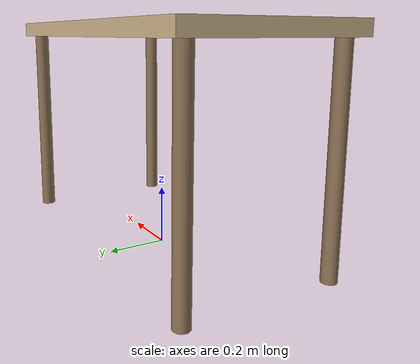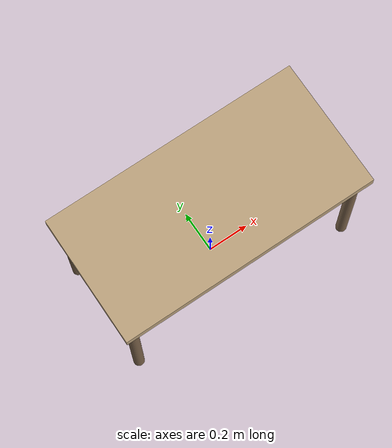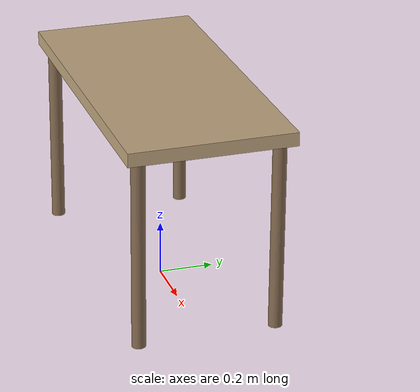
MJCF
<mujoco model="table">
  <!-- Standard lab table: 1.2m × 0.6m × 0.75m -->
  <worldbody>
    <body name="table" pos="0 0 0.375">
      <!-- Tabletop -->
      <geom name="table_top" type="box" size="0.6 0.3 0.025" pos="0 0 0.375"
            rgba="0.75 0.65 0.5 1" mass="15"/>
      <!-- Legs -->
      <geom name="leg_1" type="cylinder" size="0.025 0.36" pos="0.55 0.25 0.01" rgba="0.5 0.4 0.3 1" mass="2"/>
      <geom name="leg_2" type="cylinder" size="0.025 0.36" pos="-0.55 0.25 0.01" rgba="0.5 0.4 0.3 1" mass="2"/>
      <geom name="leg_3" type="cylinder" size="0.025 0.36" pos="0.55 -0.25 0.01" rgba="0.5 0.4 0.3 1" mass="2"/>
      <geom name="leg_4" type="cylinder" size="0.025 0.36" pos="-0.55 -0.25 0.01" rgba="0.5 0.4 0.3 1" mass="2"/>
      <freejoint/>
    </body>
  </worldbody>
</mujoco>
